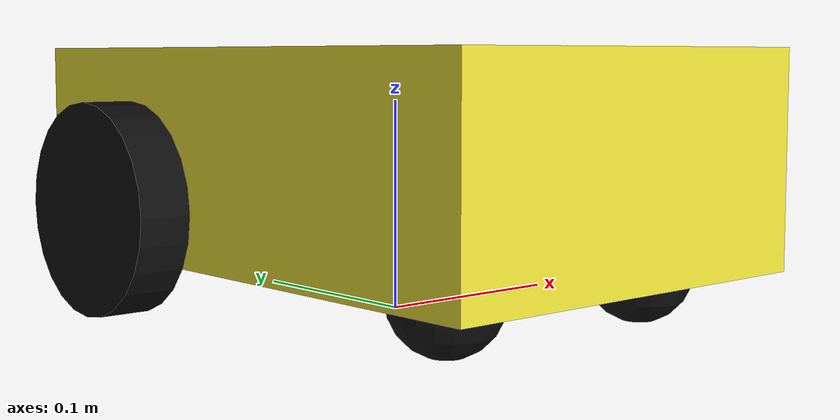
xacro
<?xml version="1.0"?>

<robot name="mobile_robot" xmlns:xacro="http://ros.org/wiki/xacro">
    <xacro:include filename="materials.xacro"/>

    <link name="world" />

    <joint name="base_footprint" type="fixed">
        <parent link="world" />
        <child link="base_chassis" />
        <origin rpy="0.0 0.0 0.0" xyz="0.0 0.0 0.075" />
    </joint>

    <link name="base_chassis">
        <inertial>
            <origin xyz="0.0 0.0 0.0" rpy="0.0 0.0 0.0"/>
            <mass value="10.0"/>
            <inertia ixx="0.04167" ixy="0.0" ixz="0.0" iyy="0.0833" iyz="0.0" izz="0.10833"/>
        </inertial>

  	    <visual>
            <origin rpy="0.0 0.0 0.0" xyz="0.0 0.0 0.0" />
            <geometry>
                <box size="0.2 0.3 0.1" />
            </geometry>
            <material name="yellow" />
  	    </visual>

        <collision>
            <origin xyz="0.0 0.0 0.0" rpy="0.0 0.0 0.0"/>
            <geometry>
                <box size="0.2 0.3 0.1" />
            </geometry>
        </collision>
    </link>

    <joint name="joint_left_drive_wheel" type="continuous">
        <parent link="base_chassis" />
        <child  link="left_drive_wheel" />
        <origin rpy="0.0 0.0 0.0" xyz="0.1125 0.075 -0.025" />
        <axis xyz="1.0 0.0 0.0" />
    </joint>

    <link name="left_drive_wheel">
        <inertial>
            <origin xyz="0.0 0.0 0.0"/>
            <mass value="0.5" />
            <inertia ixx="0.000338542" ixy="0.0" ixz="0.0" iyy="0.000338542" iyz="0.0" izz="0.000625"/>
        </inertial>

        <visual>
            <origin rpy="0.0 -1.57 0.0" xyz="0.0 0.0 0.0" />
            <geometry>
                <cylinder radius="0.05" length="0.025" />
            </geometry>
            <material name="black" />
	    </visual>

        <collision>
            <origin xyz="0.0 -1.57 0.0" rpy="0.0 0.0 0.0"/>
            <geometry>
                <cylinder radius="0.05" length="0.025" />
            </geometry>
        </collision>
    </link>

    <joint name="joint_right_drive_wheel" type="continuous">
        <parent link="base_chassis" />
        <child  link="right_drive_wheel" />
        <origin rpy="0.0 0.0 0.0" xyz="-0.1125 0.075 -0.025" />
        <axis xyz="1.0 0.0 0.0" />
    </joint>

    <link name="right_drive_wheel">
        <inertial>
            <origin rpy="0.0 0.0 0.0" xyz="0.0 0.0 0.0"/>
            <mass value="0.5" />
            <inertia ixx="0.000338542" ixy="0.0" ixz="0.0" iyy="0.000338542" iyz="0.0" izz="0.000625"/>
        </inertial>

	    <visual>
            <origin rpy="0.0 1.57 0.0" xyz="0.0 0.0 0.0" />
            <geometry>
                <cylinder radius="0.05" length="0.025" />
            </geometry>
            <material name="black" />
	    </visual>

        <collision>
            <origin xyz="0.0 1.57 0.0" rpy="0.0 0.0 0.0"/>
            <geometry>
                <cylinder radius="0.05" length="0.025" />
            </geometry>
        </collision>
    </link>

    <joint name="base_to_caster_right" type="fixed" >
        <parent link="base_chassis" />
        <child  link="caster_right" />
        <origin rpy="0.0 0.0 0.0" xyz="0.06 -0.1 -0.05" />
    </joint>

    <link name="caster_right" >
        <inertial>
            <origin xyz="0.0 0.0 0.0" rpy="0.0 0.0 0.0"/>
            <mass value="0.4"/>
            <inertia ixx="0.0" ixy="0.0" ixz="0.0" iyy="0.0" iyz="0.0" izz="0.0001"/>
        </inertial>

        <visual>
            <origin xyz="0.0 0.0 0.0" rpy="0.0 0.0 0.0" />
            <geometry>
                <sphere radius="0.025" />
            </geometry>
            <material name="black" />
        </visual>

        <collision>
            <origin xyz="0.0 0.0 0.0" rpy="0.0 0.0 0.0" />
            <geometry>
                <sphere radius="0.025" />
            </geometry>
            <material name="black" />
        </collision>
    </link>

    <joint name="base_to_caster_left" type="fixed" >
        <parent link="base_chassis" />
        <child  link="caster_left" />
        <origin rpy="0.0 0.0 0.0" xyz="-0.06 -0.1 -0.05" />
    </joint>

    <link name="caster_left" >
        <inertial>
            <origin xyz="0.0 0.0 0.0" rpy="0.0 0.0 0.0"/>
            <mass value="0.4"/>
            <inertia ixx="0.0" ixy="0.0" ixz="0.0" iyy="0.0" iyz="0.0" izz="0.0001"/>
        </inertial>

	    <visual>
            <origin xyz="0.0 0.0 0.0" rpy="0.0 0.0 0.0" />
            <geometry>
                <sphere radius="0.025" />
            </geometry>
            <material name="black" />
        </visual>

        <collision>
            <origin xyz="0.0 0.0 0.0" rpy="0.0 0.0 0.0" />
            <geometry>
                <sphere radius="0.025" />
            </geometry>
            <material name="black" />
        </collision>
    </link>

    <xacro:include filename="gazebo_control.xacro" />
</robot>

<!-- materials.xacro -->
<robot xmlns:xacro="http://www.ros.org/wiki/xacro" >
    <material name="yellow" >
        <color rgba="0.9 0.85 0.2 1.0" />
    </material>

    <material name="black" >
        <color rgba="0.05 0.05 0.05 1.0" />
    </material>

    <gazebo reference="base_chassis">
        <material>Gazebo/Yellow</material>
    </gazebo>

    <gazebo reference="left_drive_wheel">
        <material>Gazebo/Gray</material>
    </gazebo>

    <gazebo reference="right_drive_wheel">
        <material>Gazebo/Gray</material>
    </gazebo>

    <gazebo reference="caster_left">
        <material>Gazebo/Black</material>
        <mu1 value="0.001"/>
        <mu2 value="0.001"/>
    </gazebo>

    <gazebo reference="caster_right">
        <material>Gazebo/Black</material>
        <mu1 value="0.001"/>
        <mu2 value="0.001"/>
    </gazebo>

</robot>
